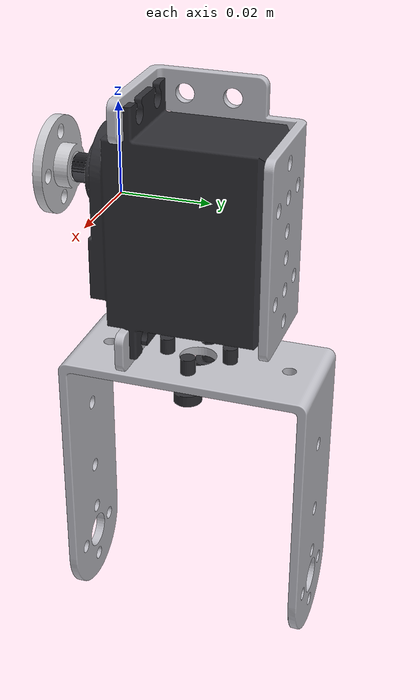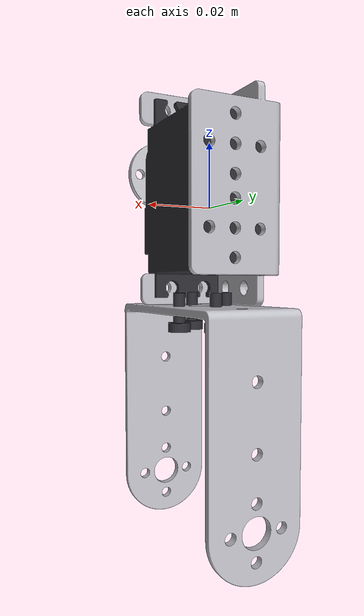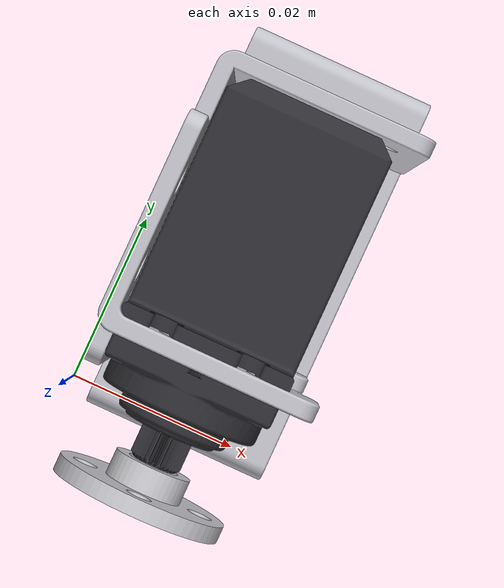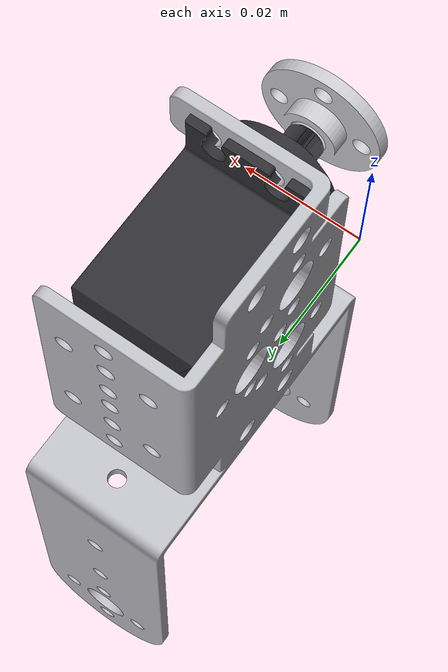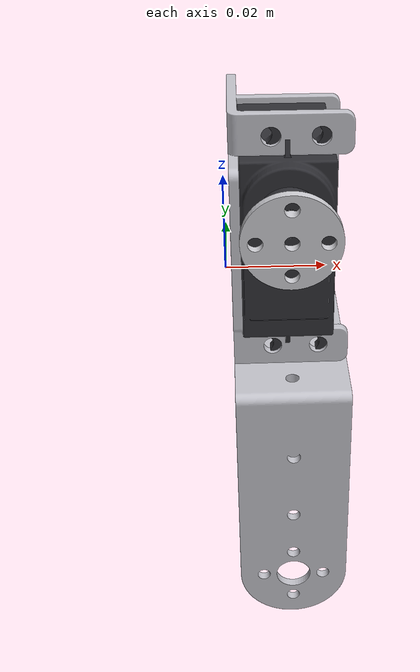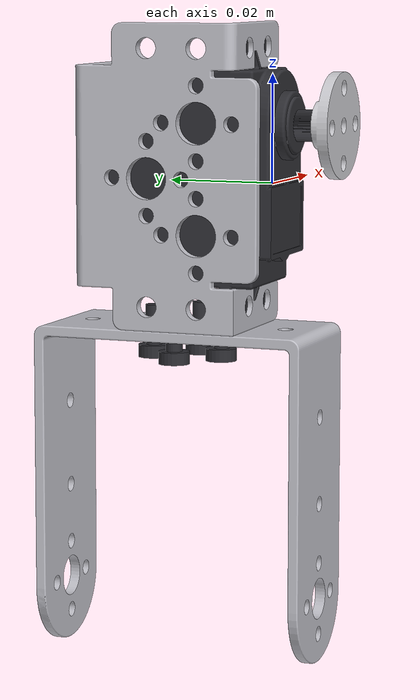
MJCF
<?xml version='1.0' encoding='utf-8'?>
  <mujoco model="left_tricep">
  <compiler angle="radian" meshdir=".." autolimits="true"/>
  <visual>
    <global offwidth="1024" offheight="1024"/>
    <headlight ambient="0.55 0.55 0.55" diffuse="0.6 0.6 0.6" specular="0.2 0.2 0.2"/>
  </visual>
  <default>
    <default class="visual"><geom type="mesh" contype="0" conaffinity="0" group="2" density="0"/></default>
    <default class="collision"><geom type="mesh" group="3"/></default>
  </default>
  <asset>
    <mesh name="multi" file="多功能/多功能支架.STL" scale="0.001 0.001 0.001"/>
    <mesh name="servo" file="舵机/舵机.STL" scale="0.001 0.001 0.001"/>
    <mesh name="horn" file="金属舵盘/金属舵盘.STL" scale="0.001 0.001 0.001"/>
    <mesh name="longU" file="长U/长U支架.STL" scale="0.001 0.001 0.001"/>
    <material name="bracket" rgba="0.75 0.75 0.78 1"/>
    <material name="dark" rgba="0.18 0.18 0.20 1"/>
    <material name="horn" rgba="0.80 0.80 0.82 1"/>
  </asset>
  <worldbody>
    <body name="multi_0" pos="0.013500 0.022000 0.000000" quat="0.000000 0.707107 0.000000 0.707107">
      <geom name="multi_0_v" mesh="multi" class="visual" material="bracket" pos="-0.029 -0.0185 -0.0125"/>
      <geom name="multi_0_c" mesh="multi" class="collision" pos="-0.029 -0.0185 -0.0125" density="2700"/>
    </body>
    <body name="servo_1" pos="0.012750 0.017000 0.000000" quat="0.000000 0.000000 -0.707107 0.707107">
      <geom name="servo_1_v" mesh="servo" class="visual" material="dark" pos="-0.009752 -0.027 -0.0215"/>
      <geom name="servo_1_c" mesh="servo" class="collision" material="dark" pos="-0.009752 -0.027 -0.0215" density="1600"/>
    </body>
    <body name="horn_2" pos="0.012750 -0.007000 0.010000" quat="0.000000 0.000000 1.000000 0.000000">
      <geom name="horn_2_v" mesh="horn" class="visual" material="horn" pos="-0.01 -0.0026 -0.01"/>
      <geom name="horn_2_c" mesh="horn" class="collision" material="horn" pos="-0.01 -0.0026 -0.01" density="2700"/>
    </body>
    <!-- 长U bracket: base plate on top bolted under the multi, prongs down. -->
    <body name="longU_down" pos="0.013500 0.022000 -0.061250" quat="-0.5 0.5 0.5 -0.5">
      <geom name="longU_down_v" mesh="longU" class="visual" material="bracket" pos="-0.027 -0.03225 -0.0125"/>
      <geom name="longU_down_c" mesh="longU" class="collision" pos="-0.027 -0.03225 -0.0125" density="2700"/>
    </body>
    <!-- M3 screws + nuts through the 长U base-plate holes into the 多功能 bottom (visual only). -->
    <geom name="base_screw_1" type="cylinder" size="0.0016 0.005" pos="0.006600 0.022100 -0.030500" material="dark" contype="0" conaffinity="0" group="2"/>
    <geom name="base_screw_2" type="cylinder" size="0.0016 0.005" pos="0.020600 0.022100 -0.030500" material="dark" contype="0" conaffinity="0" group="2"/>
    <geom name="base_screw_3" type="cylinder" size="0.0016 0.005" pos="0.013500 0.029100 -0.030500" material="dark" contype="0" conaffinity="0" group="2"/>
    <geom name="base_screw_4" type="cylinder" size="0.0016 0.005" pos="0.013500 0.015100 -0.030500" material="dark" contype="0" conaffinity="0" group="2"/>
    <geom name="base_nut_1" type="cylinder" size="0.003 0.0012" pos="0.006600 0.022100 -0.034500" material="dark" contype="0" conaffinity="0" group="2"/>
    <geom name="base_nut_2" type="cylinder" size="0.003 0.0012" pos="0.020600 0.022100 -0.034500" material="dark" contype="0" conaffinity="0" group="2"/>
    <geom name="base_nut_3" type="cylinder" size="0.003 0.0012" pos="0.013500 0.029100 -0.034500" material="dark" contype="0" conaffinity="0" group="2"/>
    <geom name="base_nut_4" type="cylinder" size="0.003 0.0012" pos="0.013500 0.015100 -0.034500" material="dark" contype="0" conaffinity="0" group="2"/>
    <!-- Horn retaining screws (visual only), through the 4 disc holes. -->
  </worldbody>
</mujoco>
